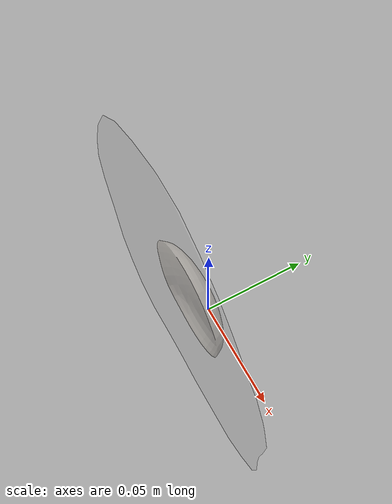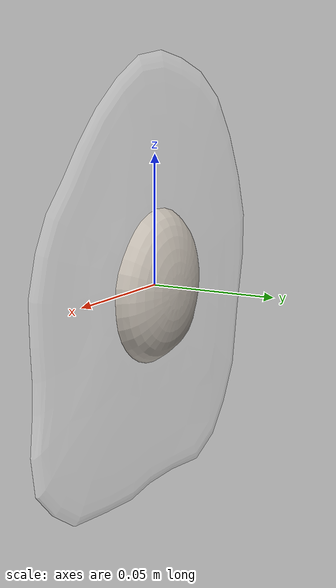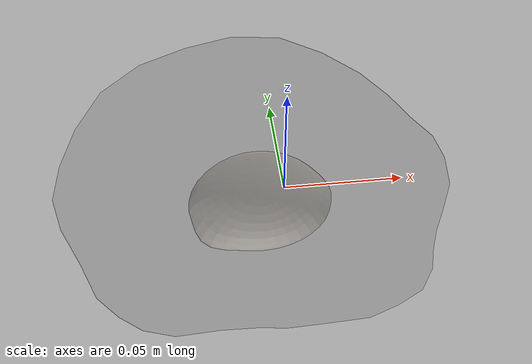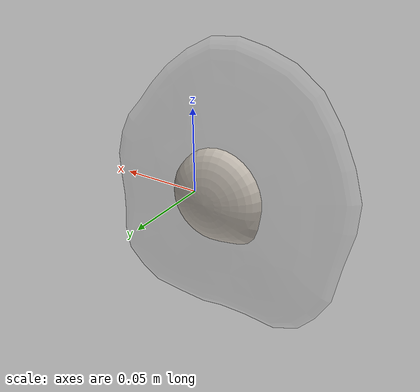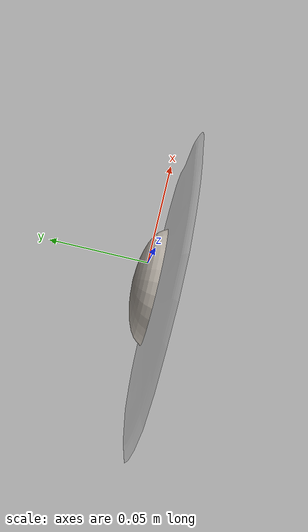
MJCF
<mujoco model="Egg_Cracked_16">
  <compiler autolimits="true" boundmass="0.01" angle="radian"/>
  <default>
    <default class="/">
      <default class="__VISUAL_MJT__">
        <geom contype="0" conaffinity="0" group="0"/>
      </default>
      <default class="__STRUCTURAL_MJT__">
        <geom contype="8" conaffinity="15" group="4" friction="0.90000000000000002 0.90000000000000002 0.001" solref="0.025000000000000001 1" solimp="0.998 0.998 0.001"/>
      </default>
      <default class="__DYNAMIC_MJT__">
        <geom contype="1" conaffinity="15" group="4" friction="0.90000000000000002 0.90000000000000002 0.001" solref="0.025000000000000001 1" solimp="0.998 0.998 0.001"/>
      </default>
    </default>
  </default>
  <asset>
    <texture name="Fried_Egg_White_Uncooked_Mat" type="2d" file="Fried_Egg_AlbedoTransparency.png"/>
    <material name="material_Fried_Egg_White_Uncooked_Mat" class="/" texture="Fried_Egg_White_Uncooked_Mat" specular="0.5" shininess="0.5" rgba="1 1 1 0.5"/>
    <texture name="Fried_Egg_Yolk_Mat" type="2d" file="Fried_Egg_AlbedoTransparency.png"/>
    <material name="material_Fried_Egg_Yolk_Mat" class="/" texture="Fried_Egg_Yolk_Mat" specular="0.5" shininess="0.5" rgba="1 1 1 1"/>
    <mesh name="Egg_Cracked_16_fried_egg_15_0" class="/" file="Egg_Cracked_16_fried_egg_15/Egg_Cracked_16_fried_egg_15_0.obj" scale="1 1 1"/>
    <mesh name="Egg_Cracked_16_fried_egg_15_1" class="/" file="Egg_Cracked_16_fried_egg_15/Egg_Cracked_16_fried_egg_15_1.obj" scale="1 1 1"/>
  </asset>
  <worldbody>
    <body name="Egg_Cracked_16">
      <joint name="Egg_Cracked_16_free" class="/" type="free" pos="0 0 0" axis="0 0 1" stiffness="0" range="0 0" armature="0" damping="0.10000000000000001" frictionloss="0"/>
      <body name="Egg_Cracked_16_fried_egg_15" pos="-0.0068199999999999997 -0.01023 -0.0058399999999999997" quat="1 0 0 0">
        <geom name="Egg_Cracked_16_fried_egg_15_0" class="__VISUAL_MJT__" type="mesh" material="material_Fried_Egg_White_Uncooked_Mat" shellinertia="false" mesh="Egg_Cracked_16_fried_egg_15_0"/>
        <geom name="Egg_Cracked_16_fried_egg_15_1" class="__VISUAL_MJT__" type="mesh" material="material_Fried_Egg_Yolk_Mat" shellinertia="false" mesh="Egg_Cracked_16_fried_egg_15_1"/>
        <geom name="Egg_Cracked_16_PrimitiveCollider_0" class="__DYNAMIC_MJT__" type="box" size="0.08158845454454422 0.010231256484985352 0.088172279298305511" rgba="0 1 0 1" pos="-0.0068223997950553894 0.010231256484985352 0.0058436170220375061" quat="1 0 0 0"/>
      </body>
    </body>
  </worldbody>
</mujoco>
